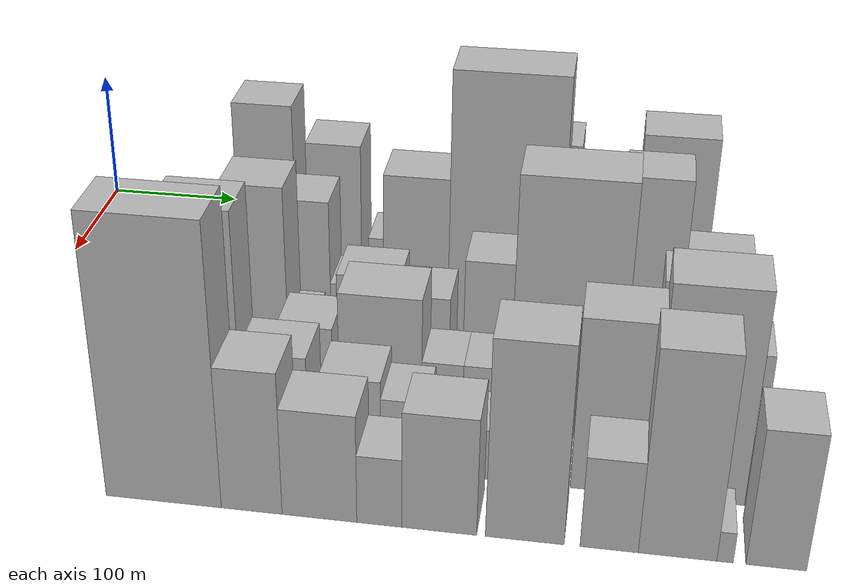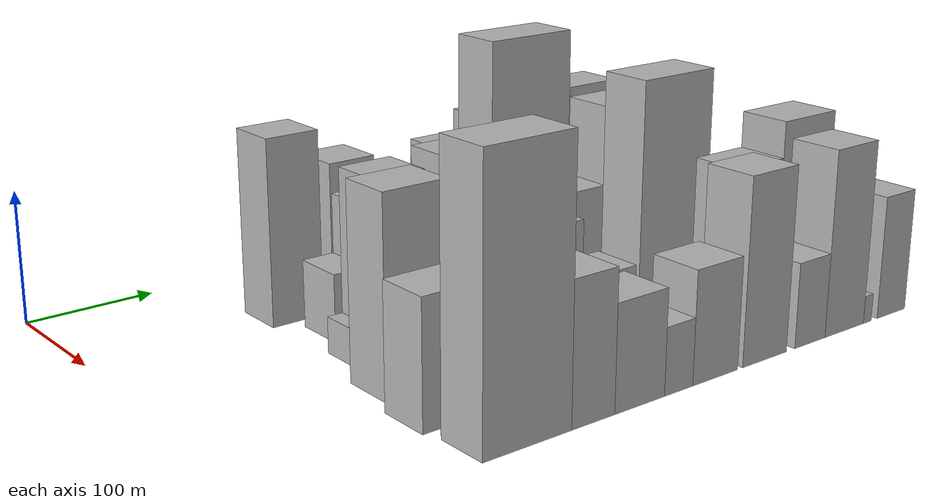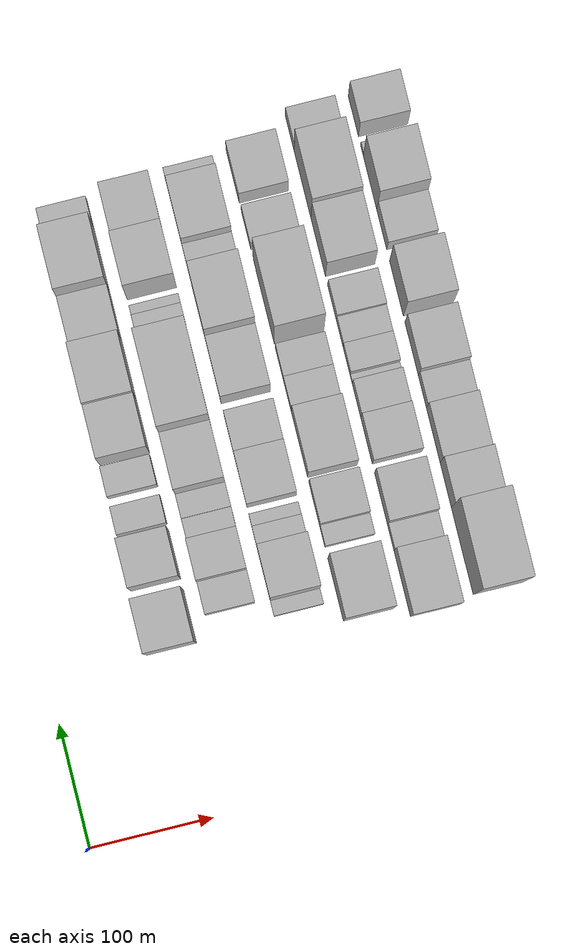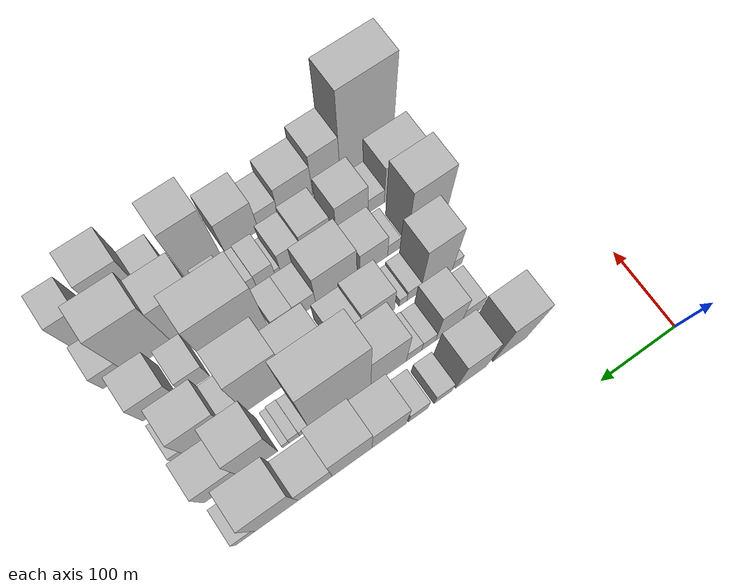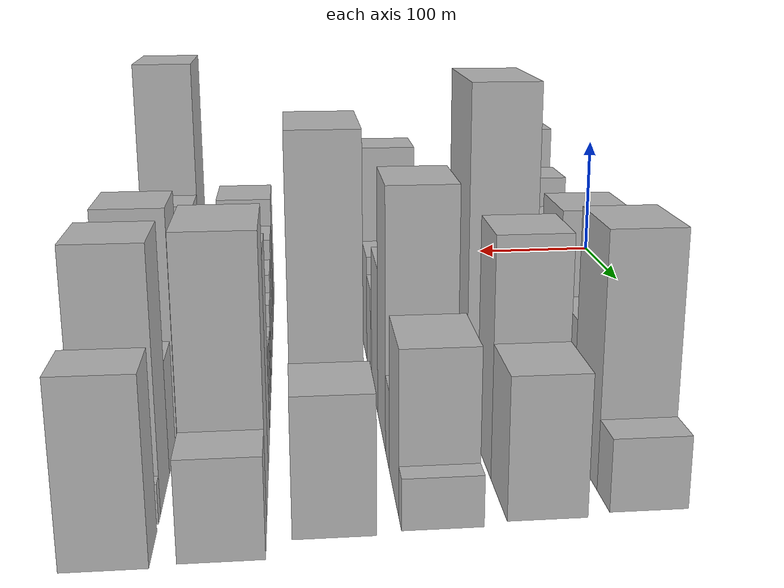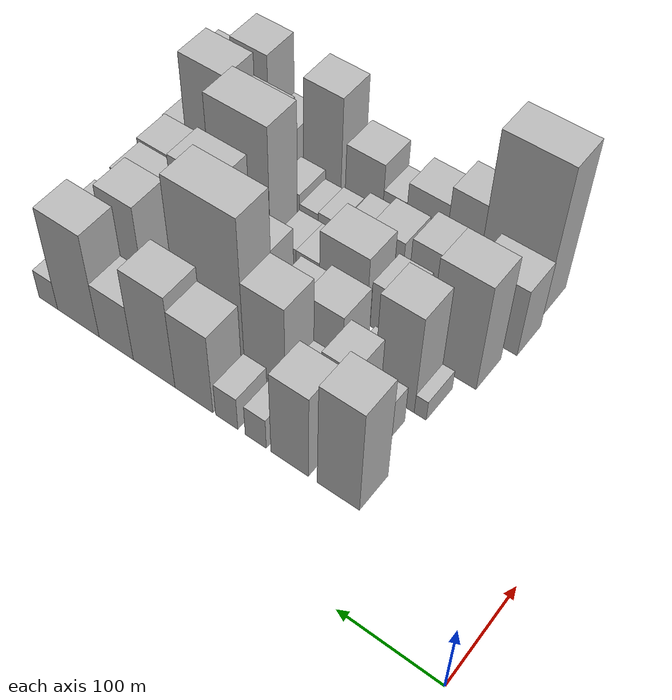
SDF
<sdf version="1.6">
 <world name="default">
  <model name="building_34">
   <static>1</static>
   <pose>100.0000 157.3321 0 0.000000 0.000000 0.000000</pose>
   <link name="link">
    <pose>0 0 70.50 0 0 0</pose>
    <collision name="collision"><geometry><box><size>40.0000 42.8180 141.0000</size></box></geometry></collision>
    <visual name="visual">
     <cast_shadows>0</cast_shadows>
     <geometry><box><size>40.0000 42.8180 141.0000</size></box></geometry>
     <material>
      <script>
       <uri>model://HANNAS_wall/materials/scripts</uri>
       <uri>model://HANNAS_wall/materials/textures</uri>
       <name>vrc/HANNAS_wall</name>
      </script>
     </material>
    </visual>
   </link>
  </model>
  <model name="building_35">
   <static>1</static>
   <pose>100.0000 207.3380 0 0.000000 0.000000 0.000000</pose>
   <link name="link">
    <pose>0 0 57.00 0 0 0</pose>
    <collision name="collision"><geometry><box><size>40.0000 39.1938 114.0000</size></box></geometry></collision>
    <visual name="visual">
     <cast_shadows>0</cast_shadows>
     <geometry><box><size>40.0000 39.1938 114.0000</size></box></geometry>
     <material>
      <script>
       <uri>model://HANNAS_wall/materials/scripts</uri>
       <uri>model://HANNAS_wall/materials/textures</uri>
       <name>vrc/HANNAS_wall</name>
      </script>
     </material>
    </visual>
   </link>
  </model>
  <model name="building_36">
   <static>1</static>
   <pose>100.0000 243.2045 0 0.000000 0.000000 0.000000</pose>
   <link name="link">
    <pose>0 0 21.00 0 0 0</pose>
    <collision name="collision"><geometry><box><size>40.0000 22.5393 42.0000</size></box></geometry></collision>
    <visual name="visual">
     <cast_shadows>0</cast_shadows>
     <geometry><box><size>40.0000 22.5393 42.0000</size></box></geometry>
     <material>
      <script>
       <uri>model://HANNAS_wall/materials/scripts</uri>
       <uri>model://HANNAS_wall/materials/textures</uri>
       <name>vrc/HANNAS_wall</name>
      </script>
     </material>
    </visual>
   </link>
  </model>
  <model name="building_37">
   <static>1</static>
   <pose>100.0000 274.6202 0 0.000000 0.000000 0.000000</pose>
   <link name="link">
    <pose>0 0 22.50 0 0 0</pose>
    <collision name="collision"><geometry><box><size>40.0000 24.2920 45.0000</size></box></geometry></collision>
    <visual name="visual">
     <cast_shadows>0</cast_shadows>
     <geometry><box><size>40.0000 24.2920 45.0000</size></box></geometry>
     <material>
      <script>
       <uri>model://HANNAS_wall/materials/scripts</uri>
       <uri>model://HANNAS_wall/materials/textures</uri>
       <name>vrc/HANNAS_wall</name>
      </script>
     </material>
    </visual>
   </link>
  </model>
  <model name="building_38">
   <static>1</static>
   <pose>100.0000 310.9925 0 0.000000 0.000000 0.000000</pose>
   <link name="link">
    <pose>0 0 54.00 0 0 0</pose>
    <collision name="collision"><geometry><box><size>40.0000 42.4526 108.0000</size></box></geometry></collision>
    <visual name="visual">
     <cast_shadows>0</cast_shadows>
     <geometry><box><size>40.0000 42.4526 108.0000</size></box></geometry>
     <material>
      <script>
       <uri>model://HANNAS_wall/materials/scripts</uri>
       <uri>model://HANNAS_wall/materials/textures</uri>
       <name>vrc/HANNAS_wall</name>
      </script>
     </material>
    </visual>
   </link>
  </model>
  <model name="building_39">
   <static>1</static>
   <pose>100.0000 356.3222 0 0.000000 0.000000 0.000000</pose>
   <link name="link">
    <pose>0 0 63.00 0 0 0</pose>
    <collision name="collision"><geometry><box><size>40.0000 48.2069 126.0000</size></box></geometry></collision>
    <visual name="visual">
     <cast_shadows>0</cast_shadows>
     <geometry><box><size>40.0000 48.2069 126.0000</size></box></geometry>
     <material>
      <script>
       <uri>model://HANNAS_wall/materials/scripts</uri>
       <uri>model://HANNAS_wall/materials/textures</uri>
       <name>vrc/HANNAS_wall</name>
      </script>
     </material>
    </visual>
   </link>
  </model>
  <model name="building_40">
   <static>1</static>
   <pose>100.0000 400.7276 0 0.000000 0.000000 0.000000</pose>
   <link name="link">
    <pose>0 0 37.50 0 0 0</pose>
    <collision name="collision"><geometry><box><size>40.0000 40.6038 75.0000</size></box></geometry></collision>
    <visual name="visual">
     <cast_shadows>0</cast_shadows>
     <geometry><box><size>40.0000 40.6038 75.0000</size></box></geometry>
     <material>
      <script>
       <uri>model://HANNAS_wall/materials/scripts</uri>
       <uri>model://HANNAS_wall/materials/textures</uri>
       <name>vrc/HANNAS_wall</name>
      </script>
     </material>
    </visual>
   </link>
  </model>
  <model name="building_41">
   <static>1</static>
   <pose>100.0000 446.4175 0 0.000000 0.000000 0.000000</pose>
   <link name="link">
    <pose>0 0 69.00 0 0 0</pose>
    <collision name="collision"><geometry><box><size>40.0000 50.7760 138.0000</size></box></geometry></collision>
    <visual name="visual">
     <cast_shadows>0</cast_shadows>
     <geometry><box><size>40.0000 50.7760 138.0000</size></box></geometry>
     <material>
      <script>
       <uri>model://HANNAS_wall/materials/scripts</uri>
       <uri>model://HANNAS_wall/materials/textures</uri>
       <name>vrc/HANNAS_wall</name>
      </script>
     </material>
    </visual>
   </link>
  </model>
  <model name="building_42">
   <static>1</static>
   <pose>100.0000 483.4078 0 0.000000 0.000000 0.000000</pose>
   <link name="link">
    <pose>0 0 19.50 0 0 0</pose>
    <collision name="collision"><geometry><box><size>40.0000 23.2046 39.0000</size></box></geometry></collision>
    <visual name="visual">
     <cast_shadows>0</cast_shadows>
     <geometry><box><size>40.0000 23.2046 39.0000</size></box></geometry>
     <material>
      <script>
       <uri>model://HANNAS_wall/materials/scripts</uri>
       <uri>model://HANNAS_wall/materials/textures</uri>
       <name>vrc/HANNAS_wall</name>
      </script>
     </material>
    </visual>
   </link>
  </model>
  <model name="building_85">
   <static>1</static>
   <pose>152.0000 168.2570 0 0.000000 0.000000 0.000000</pose>
   <link name="link">
    <pose>0 0 25.50 0 0 0</pose>
    <collision name="collision"><geometry><box><size>40.0000 25.9950 51.0000</size></box></geometry></collision>
    <visual name="visual">
     <cast_shadows>0</cast_shadows>
     <geometry><box><size>40.0000 25.9950 51.0000</size></box></geometry>
     <material>
      <script>
       <uri>model://HANNAS_wall/materials/scripts</uri>
       <uri>model://HANNAS_wall/materials/textures</uri>
       <name>vrc/HANNAS_wall</name>
      </script>
     </material>
    </visual>
   </link>
  </model>
  <model name="building_86">
   <static>1</static>
   <pose>152.0000 197.8275 0 0.000000 0.000000 0.000000</pose>
   <link name="link">
    <pose>0 0 48.00 0 0 0</pose>
    <collision name="collision"><geometry><box><size>40.0000 33.1460 96.0000</size></box></geometry></collision>
    <visual name="visual">
     <cast_shadows>0</cast_shadows>
     <geometry><box><size>40.0000 33.1460 96.0000</size></box></geometry>
     <material>
      <script>
       <uri>model://HANNAS_wall/materials/scripts</uri>
       <uri>model://HANNAS_wall/materials/textures</uri>
       <name>vrc/HANNAS_wall</name>
      </script>
     </material>
    </visual>
   </link>
  </model>
  <model name="building_87">
   <static>1</static>
   <pose>152.0000 223.3636 0 0.000000 0.000000 0.000000</pose>
   <link name="link">
    <pose>0 0 16.50 0 0 0</pose>
    <collision name="collision"><geometry><box><size>40.0000 17.9262 33.0000</size></box></geometry></collision>
    <visual name="visual">
     <cast_shadows>0</cast_shadows>
     <geometry><box><size>40.0000 17.9262 33.0000</size></box></geometry>
     <material>
      <script>
       <uri>model://HANNAS_wall/materials/scripts</uri>
       <uri>model://HANNAS_wall/materials/textures</uri>
       <name>vrc/HANNAS_wall</name>
      </script>
     </material>
    </visual>
   </link>
  </model>
  <model name="building_88">
   <static>1</static>
   <pose>152.0000 242.1547 0 0.000000 0.000000 0.000000</pose>
   <link name="link">
    <pose>0 0 18.00 0 0 0</pose>
    <collision name="collision"><geometry><box><size>40.0000 19.6560 36.0000</size></box></geometry></collision>
    <visual name="visual">
     <cast_shadows>0</cast_shadows>
     <geometry><box><size>40.0000 19.6560 36.0000</size></box></geometry>
     <material>
      <script>
       <uri>model://HANNAS_wall/materials/scripts</uri>
       <uri>model://HANNAS_wall/materials/textures</uri>
       <name>vrc/HANNAS_wall</name>
      </script>
     </material>
    </visual>
   </link>
  </model>
  <model name="building_89">
   <static>1</static>
   <pose>152.0000 274.4612 0 0.000000 0.000000 0.000000</pose>
   <link name="link">
    <pose>0 0 60.00 0 0 0</pose>
    <collision name="collision"><geometry><box><size>40.0000 44.9570 120.0000</size></box></geometry></collision>
    <visual name="visual">
     <cast_shadows>0</cast_shadows>
     <geometry><box><size>40.0000 44.9570 120.0000</size></box></geometry>
     <material>
      <script>
       <uri>model://HANNAS_wall/materials/scripts</uri>
       <uri>model://HANNAS_wall/materials/textures</uri>
       <name>vrc/HANNAS_wall</name>
      </script>
     </material>
    </visual>
   </link>
  </model>
  <model name="building_90">
   <static>1</static>
   <pose>152.0000 334.9019 0 0.000000 0.000000 0.000000</pose>
   <link name="link">
    <pose>0 0 99.00 0 0 0</pose>
    <collision name="collision"><geometry><box><size>40.0000 75.9243 198.0000</size></box></geometry></collision>
    <visual name="visual">
     <cast_shadows>0</cast_shadows>
     <geometry><box><size>40.0000 75.9243 198.0000</size></box></geometry>
     <material>
      <script>
       <uri>model://HANNAS_wall/materials/scripts</uri>
       <uri>model://HANNAS_wall/materials/textures</uri>
       <name>vrc/HANNAS_wall</name>
      </script>
     </material>
    </visual>
   </link>
  </model>
  <model name="building_91">
   <static>1</static>
   <pose>152.0000 378.7215 0 0.000000 0.000000 0.000000</pose>
   <link name="link">
    <pose>0 0 12.00 0 0 0</pose>
    <collision name="collision"><geometry><box><size>40.0000 11.7150 24.0000</size></box></geometry></collision>
    <visual name="visual">
     <cast_shadows>0</cast_shadows>
     <geometry><box><size>40.0000 11.7150 24.0000</size></box></geometry>
     <material>
      <script>
       <uri>model://HANNAS_wall/materials/scripts</uri>
       <uri>model://HANNAS_wall/materials/textures</uri>
       <name>vrc/HANNAS_wall</name>
      </script>
     </material>
    </visual>
   </link>
  </model>
  <model name="building_92">
   <static>1</static>
   <pose>152.0000 390.8551 0 0.000000 0.000000 0.000000</pose>
   <link name="link">
    <pose>0 0 13.50 0 0 0</pose>
    <collision name="collision"><geometry><box><size>40.0000 12.5521 27.0000</size></box></geometry></collision>
    <visual name="visual">
     <cast_shadows>0</cast_shadows>
     <geometry><box><size>40.0000 12.5521 27.0000</size></box></geometry>
     <material>
      <script>
       <uri>model://HANNAS_wall/materials/scripts</uri>
       <uri>model://HANNAS_wall/materials/textures</uri>
       <name>vrc/HANNAS_wall</name>
      </script>
     </material>
    </visual>
   </link>
  </model>
  <model name="building_93">
   <static>1</static>
   <pose>152.0000 401.2386 0 0.000000 0.000000 0.000000</pose>
   <link name="link">
    <pose>0 0 9.00 0 0 0</pose>
    <collision name="collision"><geometry><box><size>40.0000 8.2150 18.0000</size></box></geometry></collision>
    <visual name="visual">
     <cast_shadows>0</cast_shadows>
     <geometry><box><size>40.0000 8.2150 18.0000</size></box></geometry>
     <material>
      <script>
       <uri>model://HANNAS_wall/materials/scripts</uri>
       <uri>model://HANNAS_wall/materials/textures</uri>
       <name>vrc/HANNAS_wall</name>
      </script>
     </material>
    </visual>
   </link>
  </model>
  <model name="building_94">
   <static>1</static>
   <pose>152.0000 432.8962 0 0.000000 0.000000 0.000000</pose>
   <link name="link">
    <pose>0 0 66.00 0 0 0</pose>
    <collision name="collision"><geometry><box><size>40.0000 43.1002 132.0000</size></box></geometry></collision>
    <visual name="visual">
     <cast_shadows>0</cast_shadows>
     <geometry><box><size>40.0000 43.1002 132.0000</size></box></geometry>
     <material>
      <script>
       <uri>model://HANNAS_wall/materials/scripts</uri>
       <uri>model://HANNAS_wall/materials/textures</uri>
       <name>vrc/HANNAS_wall</name>
      </script>
     </material>
    </visual>
   </link>
  </model>
  <model name="building_95">
   <static>1</static>
   <pose>152.0000 476.7334 0 0.000000 0.000000 0.000000</pose>
   <link name="link">
    <pose>0 0 37.50 0 0 0</pose>
    <collision name="collision"><geometry><box><size>40.0000 44.5741 75.0000</size></box></geometry></collision>
    <visual name="visual">
     <cast_shadows>0</cast_shadows>
     <geometry><box><size>40.0000 44.5741 75.0000</size></box></geometry>
     <material>
      <script>
       <uri>model://HANNAS_wall/materials/scripts</uri>
       <uri>model://HANNAS_wall/materials/textures</uri>
       <name>vrc/HANNAS_wall</name>
      </script>
     </material>
    </visual>
   </link>
  </model>
  <model name="building_137">
   <static>1</static>
   <pose>204.0000 147.5376 0 0.000000 0.000000 0.000000</pose>
   <link name="link">
    <pose>0 0 13.50 0 0 0</pose>
    <collision name="collision"><geometry><box><size>40.0000 12.3800 27.0000</size></box></geometry></collision>
    <visual name="visual">
     <cast_shadows>0</cast_shadows>
     <geometry><box><size>40.0000 12.3800 27.0000</size></box></geometry>
     <material>
      <script>
       <uri>model://HANNAS_wall/materials/scripts</uri>
       <uri>model://HANNAS_wall/materials/textures</uri>
       <name>vrc/HANNAS_wall</name>
      </script>
     </material>
    </visual>
   </link>
  </model>
  <model name="building_138">
   <static>1</static>
   <pose>204.0000 174.8532 0 0.000000 0.000000 0.000000</pose>
   <link name="link">
    <pose>0 0 66.00 0 0 0</pose>
    <collision name="collision"><geometry><box><size>40.0000 42.2512 132.0000</size></box></geometry></collision>
    <visual name="visual">
     <cast_shadows>0</cast_shadows>
     <geometry><box><size>40.0000 42.2512 132.0000</size></box></geometry>
     <material>
      <script>
       <uri>model://HANNAS_wall/materials/scripts</uri>
       <uri>model://HANNAS_wall/materials/textures</uri>
       <name>vrc/HANNAS_wall</name>
      </script>
     </material>
    </visual>
   </link>
  </model>
  <model name="building_139">
   <static>1</static>
   <pose>204.0000 204.7253 0 0.000000 0.000000 0.000000</pose>
   <link name="link">
    <pose>0 0 16.50 0 0 0</pose>
    <collision name="collision"><geometry><box><size>40.0000 17.4929 33.0000</size></box></geometry></collision>
    <visual name="visual">
     <cast_shadows>0</cast_shadows>
     <geometry><box><size>40.0000 17.4929 33.0000</size></box></geometry>
     <material>
      <script>
       <uri>model://HANNAS_wall/materials/scripts</uri>
       <uri>model://HANNAS_wall/materials/textures</uri>
       <name>vrc/HANNAS_wall</name>
      </script>
     </material>
    </visual>
   </link>
  </model>
  <model name="building_140">
   <static>1</static>
   <pose>204.0000 218.5491 0 0.000000 0.000000 0.000000</pose>
   <link name="link">
    <pose>0 0 12.00 0 0 0</pose>
    <collision name="collision"><geometry><box><size>40.0000 10.1548 24.0000</size></box></geometry></collision>
    <visual name="visual">
     <cast_shadows>0</cast_shadows>
     <geometry><box><size>40.0000 10.1548 24.0000</size></box></geometry>
     <material>
      <script>
       <uri>model://HANNAS_wall/materials/scripts</uri>
       <uri>model://HANNAS_wall/materials/textures</uri>
       <name>vrc/HANNAS_wall</name>
      </script>
     </material>
    </visual>
   </link>
  </model>
  <model name="building_141">
   <static>1</static>
   <pose>204.0000 250.7621 0 0.000000 0.000000 0.000000</pose>
   <link name="link">
    <pose>0 0 36.00 0 0 0</pose>
    <collision name="collision"><geometry><box><size>40.0000 42.2712 72.0000</size></box></geometry></collision>
    <visual name="visual">
     <cast_shadows>0</cast_shadows>
     <geometry><box><size>40.0000 42.2712 72.0000</size></box></geometry>
     <material>
      <script>
       <uri>model://HANNAS_wall/materials/scripts</uri>
       <uri>model://HANNAS_wall/materials/textures</uri>
       <name>vrc/HANNAS_wall</name>
      </script>
     </material>
    </visual>
   </link>
  </model>
  <model name="building_142">
   <static>1</static>
   <pose>204.0000 288.4140 0 0.000000 0.000000 0.000000</pose>
   <link name="link">
    <pose>0 0 30.00 0 0 0</pose>
    <collision name="collision"><geometry><box><size>40.0000 33.0326 60.0000</size></box></geometry></collision>
    <visual name="visual">
     <cast_shadows>0</cast_shadows>
     <geometry><box><size>40.0000 33.0326 60.0000</size></box></geometry>
     <material>
      <script>
       <uri>model://HANNAS_wall/materials/scripts</uri>
       <uri>model://HANNAS_wall/materials/textures</uri>
       <name>vrc/HANNAS_wall</name>
      </script>
     </material>
    </visual>
   </link>
  </model>
  <model name="building_143">
   <static>1</static>
   <pose>204.0000 338.2358 0 0.000000 0.000000 0.000000</pose>
   <link name="link">
    <pose>0 0 45.00 0 0 0</pose>
    <collision name="collision"><geometry><box><size>40.0000 48.6109 90.0000</size></box></geometry></collision>
    <visual name="visual">
     <cast_shadows>0</cast_shadows>
     <geometry><box><size>40.0000 48.6109 90.0000</size></box></geometry>
     <material>
      <script>
       <uri>model://HANNAS_wall/materials/scripts</uri>
       <uri>model://HANNAS_wall/materials/textures</uri>
       <name>vrc/HANNAS_wall</name>
      </script>
     </material>
    </visual>
   </link>
  </model>
  <model name="building_144">
   <static>1</static>
   <pose>204.0000 389.2791 0 0.000000 0.000000 0.000000</pose>
   <link name="link">
    <pose>0 0 75.00 0 0 0</pose>
    <collision name="collision"><geometry><box><size>40.0000 53.4757 150.0000</size></box></geometry></collision>
    <visual name="visual">
     <cast_shadows>0</cast_shadows>
     <geometry><box><size>40.0000 53.4757 150.0000</size></box></geometry>
     <material>
      <script>
       <uri>model://HANNAS_wall/materials/scripts</uri>
       <uri>model://HANNAS_wall/materials/textures</uri>
       <name>vrc/HANNAS_wall</name>
      </script>
     </material>
    </visual>
   </link>
  </model>
  <model name="building_145">
   <static>1</static>
   <pose>204.0000 427.9162 0 0.000000 0.000000 0.000000</pose>
   <link name="link">
    <pose>0 0 22.50 0 0 0</pose>
    <collision name="collision"><geometry><box><size>40.0000 23.7984 45.0000</size></box></geometry></collision>
    <visual name="visual">
     <cast_shadows>0</cast_shadows>
     <geometry><box><size>40.0000 23.7984 45.0000</size></box></geometry>
     <material>
      <script>
       <uri>model://HANNAS_wall/materials/scripts</uri>
       <uri>model://HANNAS_wall/materials/textures</uri>
       <name>vrc/HANNAS_wall</name>
      </script>
     </material>
    </visual>
   </link>
  </model>
  <model name="building_146">
   <static>1</static>
   <pose>204.0000 464.9511 0 0.000000 0.000000 0.000000</pose>
   <link name="link">
    <pose>0 0 43.50 0 0 0</pose>
    <collision name="collision"><geometry><box><size>40.0000 50.2715 87.0000</size></box></geometry></collision>
    <visual name="visual">
     <cast_shadows>0</cast_shadows>
     <geometry><box><size>40.0000 50.2715 87.0000</size></box></geometry>
     <material>
      <script>
       <uri>model://HANNAS_wall/materials/scripts</uri>
       <uri>model://HANNAS_wall/materials/textures</uri>
       <name>vrc/HANNAS_wall</name>
      </script>
     </material>
    </visual>
   </link>
  </model>
  <model name="building_147">
   <static>1</static>
   <pose>204.0000 496.6836 0 0.000000 0.000000 0.000000</pose>
   <link name="link">
    <pose>0 0 13.50 0 0 0</pose>
    <collision name="collision"><geometry><box><size>40.0000 13.1935 27.0000</size></box></geometry></collision>
    <visual name="visual">
     <cast_shadows>0</cast_shadows>
     <geometry><box><size>40.0000 13.1935 27.0000</size></box></geometry>
     <material>
      <script>
       <uri>model://HANNAS_wall/materials/scripts</uri>
       <uri>model://HANNAS_wall/materials/textures</uri>
       <name>vrc/HANNAS_wall</name>
      </script>
     </material>
    </visual>
   </link>
  </model>
  <model name="building_188">
   <static>1</static>
   <pose>256.0000 150.1059 0 0.000000 0.000000 0.000000</pose>
   <link name="link">
    <pose>0 0 70.50 0 0 0</pose>
    <collision name="collision"><geometry><box><size>40.0000 50.8100 141.0000</size></box></geometry></collision>
    <visual name="visual">
     <cast_shadows>0</cast_shadows>
     <geometry><box><size>40.0000 50.8100 141.0000</size></box></geometry>
     <material>
      <script>
       <uri>model://HANNAS_wall/materials/scripts</uri>
       <uri>model://HANNAS_wall/materials/textures</uri>
       <name>vrc/HANNAS_wall</name>
      </script>
     </material>
    </visual>
   </link>
  </model>
  <model name="building_189">
   <static>1</static>
   <pose>256.0000 192.9532 0 0.000000 0.000000 0.000000</pose>
   <link name="link">
    <pose>0 0 16.50 0 0 0</pose>
    <collision name="collision"><geometry><box><size>40.0000 16.8845 33.0000</size></box></geometry></collision>
    <visual name="visual">
     <cast_shadows>0</cast_shadows>
     <geometry><box><size>40.0000 16.8845 33.0000</size></box></geometry>
     <material>
      <script>
       <uri>model://HANNAS_wall/materials/scripts</uri>
       <uri>model://HANNAS_wall/materials/textures</uri>
       <name>vrc/HANNAS_wall</name>
      </script>
     </material>
    </visual>
   </link>
  </model>
  <model name="building_190">
   <static>1</static>
   <pose>256.0000 219.2184 0 0.000000 0.000000 0.000000</pose>
   <link name="link">
    <pose>0 0 31.50 0 0 0</pose>
    <collision name="collision"><geometry><box><size>40.0000 35.6460 63.0000</size></box></geometry></collision>
    <visual name="visual">
     <cast_shadows>0</cast_shadows>
     <geometry><box><size>40.0000 35.6460 63.0000</size></box></geometry>
     <material>
      <script>
       <uri>model://HANNAS_wall/materials/scripts</uri>
       <uri>model://HANNAS_wall/materials/textures</uri>
       <name>vrc/HANNAS_wall</name>
      </script>
     </material>
    </visual>
   </link>
  </model>
  <model name="building_191">
   <static>1</static>
   <pose>256.0000 267.5065 0 0.000000 0.000000 0.000000</pose>
   <link name="link">
    <pose>0 0 45.00 0 0 0</pose>
    <collision name="collision"><geometry><box><size>40.0000 52.9302 90.0000</size></box></geometry></collision>
    <visual name="visual">
     <cast_shadows>0</cast_shadows>
     <geometry><box><size>40.0000 52.9302 90.0000</size></box></geometry>
     <material>
      <script>
       <uri>model://HANNAS_wall/materials/scripts</uri>
       <uri>model://HANNAS_wall/materials/textures</uri>
       <name>vrc/HANNAS_wall</name>
      </script>
     </material>
    </visual>
   </link>
  </model>
  <model name="building_192">
   <static>1</static>
   <pose>256.0000 307.1380 0 0.000000 0.000000 0.000000</pose>
   <link name="link">
    <pose>0 0 22.50 0 0 0</pose>
    <collision name="collision"><geometry><box><size>40.0000 26.3327 45.0000</size></box></geometry></collision>
    <visual name="visual">
     <cast_shadows>0</cast_shadows>
     <geometry><box><size>40.0000 26.3327 45.0000</size></box></geometry>
     <material>
      <script>
       <uri>model://HANNAS_wall/materials/scripts</uri>
       <uri>model://HANNAS_wall/materials/textures</uri>
       <name>vrc/HANNAS_wall</name>
      </script>
     </material>
    </visual>
   </link>
  </model>
  <model name="building_193">
   <static>1</static>
   <pose>256.0000 333.4560 0 0.000000 0.000000 0.000000</pose>
   <link name="link">
    <pose>0 0 22.50 0 0 0</pose>
    <collision name="collision"><geometry><box><size>40.0000 26.3033 45.0000</size></box></geometry></collision>
    <visual name="visual">
     <cast_shadows>0</cast_shadows>
     <geometry><box><size>40.0000 26.3033 45.0000</size></box></geometry>
     <material>
      <script>
       <uri>model://HANNAS_wall/materials/scripts</uri>
       <uri>model://HANNAS_wall/materials/textures</uri>
       <name>vrc/HANNAS_wall</name>
      </script>
     </material>
    </visual>
   </link>
  </model>
  <model name="building_194">
   <static>1</static>
   <pose>256.0000 383.9982 0 0.000000 0.000000 0.000000</pose>
   <link name="link">
    <pose>0 0 90.00 0 0 0</pose>
    <collision name="collision"><geometry><box><size>40.0000 68.7810 180.0000</size></box></geometry></collision>
    <visual name="visual">
     <cast_shadows>0</cast_shadows>
     <geometry><box><size>40.0000 68.7810 180.0000</size></box></geometry>
     <material>
      <script>
       <uri>model://HANNAS_wall/materials/scripts</uri>
       <uri>model://HANNAS_wall/materials/textures</uri>
       <name>vrc/HANNAS_wall</name>
      </script>
     </material>
    </visual>
   </link>
  </model>
  <model name="building_195">
   <static>1</static>
   <pose>256.0000 441.8859 0 0.000000 0.000000 0.000000</pose>
   <link name="link">
    <pose>0 0 27.00 0 0 0</pose>
    <collision name="collision"><geometry><box><size>40.0000 30.9943 54.0000</size></box></geometry></collision>
    <visual name="visual">
     <cast_shadows>0</cast_shadows>
     <geometry><box><size>40.0000 30.9943 54.0000</size></box></geometry>
     <material>
      <script>
       <uri>model://HANNAS_wall/materials/scripts</uri>
       <uri>model://HANNAS_wall/materials/textures</uri>
       <name>vrc/HANNAS_wall</name>
      </script>
     </material>
    </visual>
   </link>
  </model>
  <model name="building_196">
   <static>1</static>
   <pose>256.0000 485.4907 0 0.000000 0.000000 0.000000</pose>
   <link name="link">
    <pose>0 0 36.00 0 0 0</pose>
    <collision name="collision"><geometry><box><size>40.0000 42.2153 72.0000</size></box></geometry></collision>
    <visual name="visual">
     <cast_shadows>0</cast_shadows>
     <geometry><box><size>40.0000 42.2153 72.0000</size></box></geometry>
     <material>
      <script>
       <uri>model://HANNAS_wall/materials/scripts</uri>
       <uri>model://HANNAS_wall/materials/textures</uri>
       <name>vrc/HANNAS_wall</name>
      </script>
     </material>
    </visual>
   </link>
  </model>
  <model name="building_242">
   <static>1</static>
   <pose>308.0000 142.0903 0 0.000000 0.000000 0.000000</pose>
   <link name="link">
    <pose>0 0 45.00 0 0 0</pose>
    <collision name="collision"><geometry><box><size>40.0000 53.2506 90.0000</size></box></geometry></collision>
    <visual name="visual">
     <cast_shadows>0</cast_shadows>
     <geometry><box><size>40.0000 53.2506 90.0000</size></box></geometry>
     <material>
      <script>
       <uri>model://HANNAS_wall/materials/scripts</uri>
       <uri>model://HANNAS_wall/materials/textures</uri>
       <name>vrc/HANNAS_wall</name>
      </script>
     </material>
    </visual>
   </link>
  </model>
  <model name="building_243">
   <static>1</static>
   <pose>308.0000 179.3843 0 0.000000 0.000000 0.000000</pose>
   <link name="link">
    <pose>0 0 18.00 0 0 0</pose>
    <collision name="collision"><geometry><box><size>40.0000 21.3373 36.0000</size></box></geometry></collision>
    <visual name="visual">
     <cast_shadows>0</cast_shadows>
     <geometry><box><size>40.0000 21.3373 36.0000</size></box></geometry>
     <material>
      <script>
       <uri>model://HANNAS_wall/materials/scripts</uri>
       <uri>model://HANNAS_wall/materials/textures</uri>
       <name>vrc/HANNAS_wall</name>
      </script>
     </material>
    </visual>
   </link>
  </model>
  <model name="building_244">
   <static>1</static>
   <pose>308.0000 211.0693 0 0.000000 0.000000 0.000000</pose>
   <link name="link">
    <pose>0 0 37.50 0 0 0</pose>
    <collision name="collision"><geometry><box><size>40.0000 42.0326 75.0000</size></box></geometry></collision>
    <visual name="visual">
     <cast_shadows>0</cast_shadows>
     <geometry><box><size>40.0000 42.0326 75.0000</size></box></geometry>
     <material>
      <script>
       <uri>model://HANNAS_wall/materials/scripts</uri>
       <uri>model://HANNAS_wall/materials/textures</uri>
       <name>vrc/HANNAS_wall</name>
      </script>
     </material>
    </visual>
   </link>
  </model>
  <model name="building_245">
   <static>1</static>
   <pose>308.0000 257.8985 0 0.000000 0.000000 0.000000</pose>
   <link name="link">
    <pose>0 0 31.50 0 0 0</pose>
    <collision name="collision"><geometry><box><size>40.0000 37.6259 63.0000</size></box></geometry></collision>
    <visual name="visual">
     <cast_shadows>0</cast_shadows>
     <geometry><box><size>40.0000 37.6259 63.0000</size></box></geometry>
     <material>
      <script>
       <uri>model://HANNAS_wall/materials/scripts</uri>
       <uri>model://HANNAS_wall/materials/textures</uri>
       <name>vrc/HANNAS_wall</name>
      </script>
     </material>
    </visual>
   </link>
  </model>
  <model name="building_246">
   <static>1</static>
   <pose>308.0000 290.6129 0 0.000000 0.000000 0.000000</pose>
   <link name="link">
    <pose>0 0 25.50 0 0 0</pose>
    <collision name="collision"><geometry><box><size>40.0000 27.8030 51.0000</size></box></geometry></collision>
    <visual name="visual">
     <cast_shadows>0</cast_shadows>
     <geometry><box><size>40.0000 27.8030 51.0000</size></box></geometry>
     <material>
      <script>
       <uri>model://HANNAS_wall/materials/scripts</uri>
       <uri>model://HANNAS_wall/materials/textures</uri>
       <name>vrc/HANNAS_wall</name>
      </script>
     </material>
    </visual>
   </link>
  </model>
  <model name="building_247">
   <static>1</static>
   <pose>308.0000 307.9024 0 0.000000 0.000000 0.000000</pose>
   <link name="link">
    <pose>0 0 7.50 0 0 0</pose>
    <collision name="collision"><geometry><box><size>40.0000 6.7761 15.0000</size></box></geometry></collision>
    <visual name="visual">
     <cast_shadows>0</cast_shadows>
     <geometry><box><size>40.0000 6.7761 15.0000</size></box></geometry>
     <material>
      <script>
       <uri>model://HANNAS_wall/materials/scripts</uri>
       <uri>model://HANNAS_wall/materials/textures</uri>
       <name>vrc/HANNAS_wall</name>
      </script>
     </material>
    </visual>
   </link>
  </model>
  <model name="building_248">
   <static>1</static>
   <pose>308.0000 322.9812 0 0.000000 0.000000 0.000000</pose>
   <link name="link">
    <pose>0 0 19.50 0 0 0</pose>
    <collision name="collision"><geometry><box><size>40.0000 23.3814 39.0000</size></box></geometry></collision>
    <visual name="visual">
     <cast_shadows>0</cast_shadows>
     <geometry><box><size>40.0000 23.3814 39.0000</size></box></geometry>
     <material>
      <script>
       <uri>model://HANNAS_wall/materials/scripts</uri>
       <uri>model://HANNAS_wall/materials/textures</uri>
       <name>vrc/HANNAS_wall</name>
      </script>
     </material>
    </visual>
   </link>
  </model>
  <model name="building_249">
   <static>1</static>
   <pose>308.0000 345.4134 0 0.000000 0.000000 0.000000</pose>
   <link name="link">
    <pose>0 0 18.00 0 0 0</pose>
    <collision name="collision"><geometry><box><size>40.0000 21.4829 36.0000</size></box></geometry></collision>
    <visual name="visual">
     <cast_shadows>0</cast_shadows>
     <geometry><box><size>40.0000 21.4829 36.0000</size></box></geometry>
     <material>
      <script>
       <uri>model://HANNAS_wall/materials/scripts</uri>
       <uri>model://HANNAS_wall/materials/textures</uri>
       <name>vrc/HANNAS_wall</name>
      </script>
     </material>
    </visual>
   </link>
  </model>
  <model name="building_250">
   <static>1</static>
   <pose>308.0000 370.4248 0 0.000000 0.000000 0.000000</pose>
   <link name="link">
    <pose>0 0 24.00 0 0 0</pose>
    <collision name="collision"><geometry><box><size>40.0000 28.5401 48.0000</size></box></geometry></collision>
    <visual name="visual">
     <cast_shadows>0</cast_shadows>
     <geometry><box><size>40.0000 28.5401 48.0000</size></box></geometry>
     <material>
      <script>
       <uri>model://HANNAS_wall/materials/scripts</uri>
       <uri>model://HANNAS_wall/materials/textures</uri>
       <name>vrc/HANNAS_wall</name>
      </script>
     </material>
    </visual>
   </link>
  </model>
  <model name="building_251">
   <static>1</static>
   <pose>308.0000 415.3487 0 0.000000 0.000000 0.000000</pose>
   <link name="link">
    <pose>0 0 60.00 0 0 0</pose>
    <collision name="collision"><geometry><box><size>40.0000 47.3076 120.0000</size></box></geometry></collision>
    <visual name="visual">
     <cast_shadows>0</cast_shadows>
     <geometry><box><size>40.0000 47.3076 120.0000</size></box></geometry>
     <material>
      <script>
       <uri>model://HANNAS_wall/materials/scripts</uri>
       <uri>model://HANNAS_wall/materials/textures</uri>
       <name>vrc/HANNAS_wall</name>
      </script>
     </material>
    </visual>
   </link>
  </model>
  <model name="building_252">
   <static>1</static>
   <pose>308.0000 466.4512 0 0.000000 0.000000 0.000000</pose>
   <link name="link">
    <pose>0 0 73.50 0 0 0</pose>
    <collision name="collision"><geometry><box><size>40.0000 54.8975 147.0000</size></box></geometry></collision>
    <visual name="visual">
     <cast_shadows>0</cast_shadows>
     <geometry><box><size>40.0000 54.8975 147.0000</size></box></geometry>
     <material>
      <script>
       <uri>model://HANNAS_wall/materials/scripts</uri>
       <uri>model://HANNAS_wall/materials/textures</uri>
       <name>vrc/HANNAS_wall</name>
      </script>
     </material>
    </visual>
   </link>
  </model>
  <model name="building_253">
   <static>1</static>
   <pose>308.0000 508.5110 0 0.000000 0.000000 0.000000</pose>
   <link name="link">
    <pose>0 0 25.50 0 0 0</pose>
    <collision name="collision"><geometry><box><size>40.0000 29.2221 51.0000</size></box></geometry></collision>
    <visual name="visual">
     <cast_shadows>0</cast_shadows>
     <geometry><box><size>40.0000 29.2221 51.0000</size></box></geometry>
     <material>
      <script>
       <uri>model://HANNAS_wall/materials/scripts</uri>
       <uri>model://HANNAS_wall/materials/textures</uri>
       <name>vrc/HANNAS_wall</name>
      </script>
     </material>
    </visual>
   </link>
  </model>
  <model name="building_290">
   <static>1</static>
   <pose>360.0000 155.5835 0 0.000000 0.000000 0.000000</pose>
   <link name="link">
    <pose>0 0 96.00 0 0 0</pose>
    <collision name="collision"><geometry><box><size>40.0000 70.3909 192.0000</size></box></geometry></collision>
    <visual name="visual">
     <cast_shadows>0</cast_shadows>
     <geometry><box><size>40.0000 70.3909 192.0000</size></box></geometry>
     <material>
      <script>
       <uri>model://HANNAS_wall/materials/scripts</uri>
       <uri>model://HANNAS_wall/materials/textures</uri>
       <name>vrc/HANNAS_wall</name>
      </script>
     </material>
    </visual>
   </link>
  </model>
  <model name="building_291">
   <static>1</static>
   <pose>360.0000 209.0379 0 0.000000 0.000000 0.000000</pose>
   <link name="link">
    <pose>0 0 49.50 0 0 0</pose>
    <collision name="collision"><geometry><box><size>40.0000 36.5178 99.0000</size></box></geometry></collision>
    <visual name="visual">
     <cast_shadows>0</cast_shadows>
     <geometry><box><size>40.0000 36.5178 99.0000</size></box></geometry>
     <material>
      <script>
       <uri>model://HANNAS_wall/materials/scripts</uri>
       <uri>model://HANNAS_wall/materials/textures</uri>
       <name>vrc/HANNAS_wall</name>
      </script>
     </material>
    </visual>
   </link>
  </model>
  <model name="building_292">
   <static>1</static>
   <pose>360.0000 249.4975 0 0.000000 0.000000 0.000000</pose>
   <link name="link">
    <pose>0 0 37.50 0 0 0</pose>
    <collision name="collision"><geometry><box><size>40.0000 44.4015 75.0000</size></box></geometry></collision>
    <visual name="visual">
     <cast_shadows>0</cast_shadows>
     <geometry><box><size>40.0000 44.4015 75.0000</size></box></geometry>
     <material>
      <script>
       <uri>model://HANNAS_wall/materials/scripts</uri>
       <uri>model://HANNAS_wall/materials/textures</uri>
       <name>vrc/HANNAS_wall</name>
      </script>
     </material>
    </visual>
   </link>
  </model>
  <model name="building_293">
   <static>1</static>
   <pose>360.0000 284.8076 0 0.000000 0.000000 0.000000</pose>
   <link name="link">
    <pose>0 0 24.00 0 0 0</pose>
    <collision name="collision"><geometry><box><size>40.0000 26.2186 48.0000</size></box></geometry></collision>
    <visual name="visual">
     <cast_shadows>0</cast_shadows>
     <geometry><box><size>40.0000 26.2186 48.0000</size></box></geometry>
     <material>
      <script>
       <uri>model://HANNAS_wall/materials/scripts</uri>
       <uri>model://HANNAS_wall/materials/textures</uri>
       <name>vrc/HANNAS_wall</name>
      </script>
     </material>
    </visual>
   </link>
  </model>
  <model name="building_294">
   <static>1</static>
   <pose>360.0000 319.6822 0 0.000000 0.000000 0.000000</pose>
   <link name="link">
    <pose>0 0 40.50 0 0 0</pose>
    <collision name="collision"><geometry><box><size>40.0000 43.5307 81.0000</size></box></geometry></collision>
    <visual name="visual">
     <cast_shadows>0</cast_shadows>
     <geometry><box><size>40.0000 43.5307 81.0000</size></box></geometry>
     <material>
      <script>
       <uri>model://HANNAS_wall/materials/scripts</uri>
       <uri>model://HANNAS_wall/materials/textures</uri>
       <name>vrc/HANNAS_wall</name>
      </script>
     </material>
    </visual>
   </link>
  </model>
  <model name="building_295">
   <static>1</static>
   <pose>360.0000 368.9494 0 0.000000 0.000000 0.000000</pose>
   <link name="link">
    <pose>0 0 67.50 0 0 0</pose>
    <collision name="collision"><geometry><box><size>40.0000 45.0038 135.0000</size></box></geometry></collision>
    <visual name="visual">
     <cast_shadows>0</cast_shadows>
     <geometry><box><size>40.0000 45.0038 135.0000</size></box></geometry>
     <material>
      <script>
       <uri>model://HANNAS_wall/materials/scripts</uri>
       <uri>model://HANNAS_wall/materials/textures</uri>
       <name>vrc/HANNAS_wall</name>
      </script>
     </material>
    </visual>
   </link>
  </model>
  <model name="building_296">
   <static>1</static>
   <pose>360.0000 416.7988 0 0.000000 0.000000 0.000000</pose>
   <link name="link">
    <pose>0 0 31.50 0 0 0</pose>
    <collision name="collision"><geometry><box><size>40.0000 32.6948 63.0000</size></box></geometry></collision>
    <visual name="visual">
     <cast_shadows>0</cast_shadows>
     <geometry><box><size>40.0000 32.6948 63.0000</size></box></geometry>
     <material>
      <script>
       <uri>model://HANNAS_wall/materials/scripts</uri>
       <uri>model://HANNAS_wall/materials/textures</uri>
       <name>vrc/HANNAS_wall</name>
      </script>
     </material>
    </visual>
   </link>
  </model>
  <model name="building_297">
   <static>1</static>
   <pose>360.0000 454.9481 0 0.000000 0.000000 0.000000</pose>
   <link name="link">
    <pose>0 0 69.00 0 0 0</pose>
    <collision name="collision"><geometry><box><size>40.0000 43.6039 138.0000</size></box></geometry></collision>
    <visual name="visual">
     <cast_shadows>0</cast_shadows>
     <geometry><box><size>40.0000 43.6039 138.0000</size></box></geometry>
     <material>
      <script>
       <uri>model://HANNAS_wall/materials/scripts</uri>
       <uri>model://HANNAS_wall/materials/textures</uri>
       <name>vrc/HANNAS_wall</name>
      </script>
     </material>
    </visual>
   </link>
  </model>
  <model name="building_298">
   <static>1</static>
   <pose>360.0000 481.2544 0 0.000000 0.000000 0.000000</pose>
   <link name="link">
    <pose>0 0 10.50 0 0 0</pose>
    <collision name="collision"><geometry><box><size>40.0000 9.0086 21.0000</size></box></geometry></collision>
    <visual name="visual">
     <cast_shadows>0</cast_shadows>
     <geometry><box><size>40.0000 9.0086 21.0000</size></box></geometry>
     <material>
      <script>
       <uri>model://HANNAS_wall/materials/scripts</uri>
       <uri>model://HANNAS_wall/materials/textures</uri>
       <name>vrc/HANNAS_wall</name>
      </script>
     </material>
    </visual>
   </link>
  </model>
  <model name="building_299">
   <static>1</static>
   <pose>360.0000 509.2565 0 0.000000 0.000000 0.000000</pose>
   <link name="link">
    <pose>0 0 46.50 0 0 0</pose>
    <collision name="collision"><geometry><box><size>40.0000 32.9957 93.0000</size></box></geometry></collision>
    <visual name="visual">
     <cast_shadows>0</cast_shadows>
     <geometry><box><size>40.0000 32.9957 93.0000</size></box></geometry>
     <material>
      <script>
       <uri>model://HANNAS_wall/materials/scripts</uri>
       <uri>model://HANNAS_wall/materials/textures</uri>
       <name>vrc/HANNAS_wall</name>
      </script>
     </material>
    </visual>
   </link>
  </model>
 </world>
</sdf>
